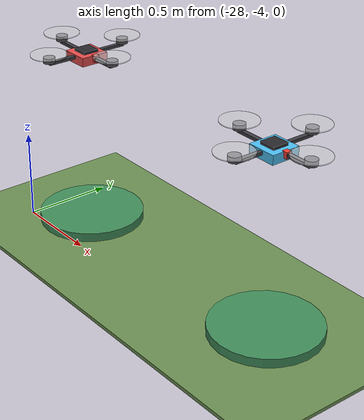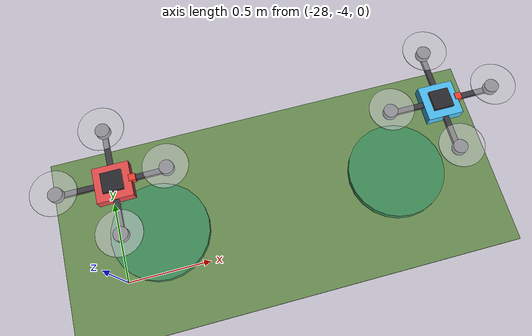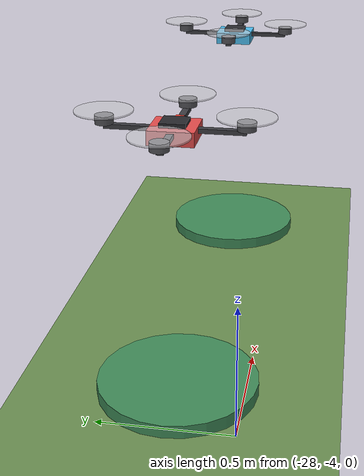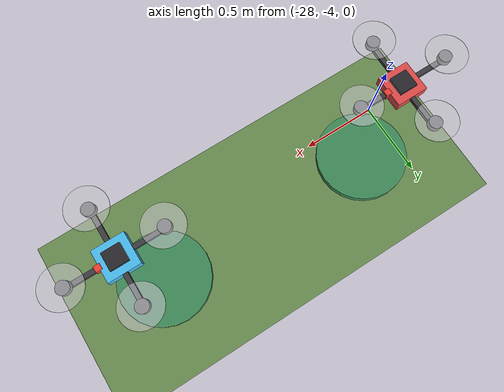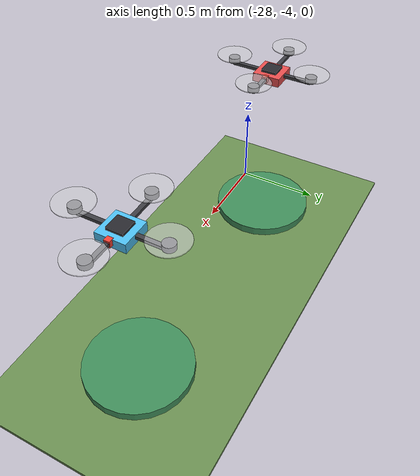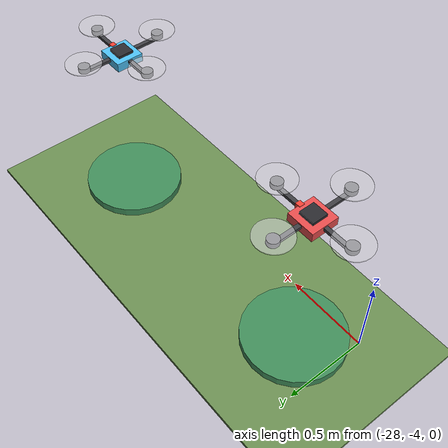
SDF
<sdf version="1.7">
 <world name="zx2026_forest">
  <include><uri>model://sun</uri></include>
  <model name="ground_plane">
   <static>true</static>
   <pose>0.00 0.00 -0.01 0 0 0</pose>
   <link name="link">
    <collision name="col"><geometry><box><size>70.00 70.00 0.02</size></box></geometry></collision>
    <visual name="vis">
     <geometry><box><size>70.00 70.00 0.02</size></box></geometry>
     <material>
      <ambient>0.42 0.56 0.32 1.00</ambient>
      <diffuse>0.42 0.56 0.32 1.00</diffuse>
      <specular>0.2 0.2 0.2 1</specular>
     </material>
    </visual>
   </link>
  </model>
  <model name="pad_0">
   <static>true</static>
   <pose>-27.75 -3.75 0.025 0 0 0</pose>
   <link name="pad">
    <collision name="col">
     <geometry><cylinder><radius>0.3</radius><length>0.05</length></cylinder></geometry>
    </collision>
    <visual name="vis">
     <geometry><cylinder><radius>0.3</radius><length>0.05</length></cylinder></geometry>
     <material>
      <ambient>0.25 0.55 0.35 1.00</ambient>
      <diffuse>0.25 0.55 0.35 1.00</diffuse>
      <specular>0.2 0.2 0.2 1</specular>
     </material>
    </visual>
   </link>
  </model>
  <model name="pad_1">
   <static>true</static>
   <pose>-26.25 -3.75 0.025 0 0 0</pose>
   <link name="pad">
    <collision name="col">
     <geometry><cylinder><radius>0.3</radius><length>0.05</length></cylinder></geometry>
    </collision>
    <visual name="vis">
     <geometry><cylinder><radius>0.3</radius><length>0.05</length></cylinder></geometry>
     <material>
      <ambient>0.25 0.55 0.35 1.00</ambient>
      <diffuse>0.25 0.55 0.35 1.00</diffuse>
      <specular>0.2 0.2 0.2 1</specular>
     </material>
    </visual>
   </link>
  </model>
  <model name="drone_0">
   <pose>-27.75 -3.75 1.0 0 0 0</pose>
   <link name="base_link">
    <inertial>
     <mass>2.0</mass>
     <inertia><ixx>0.04833</ixx><iyy>0.04833</iyy><izz>0.08333</izz><ixy>0</ixy><ixz>0</ixz><iyz>0</iyz></inertia>
    </inertial>
    <collision name="col"><geometry><box><size>0.5 0.5 0.2</size></box></geometry></collision>
    <visual name="chassis">
     <geometry><box><size>0.16 0.16 0.05</size></box></geometry>
     <material>
      <ambient>0.90 0.30 0.30 1.00</ambient>
      <diffuse>0.90 0.30 0.30 1.00</diffuse>
      <specular>0.2 0.2 0.2 1</specular>
     </material>
    </visual>
    <visual name="top">
     <pose>0.000 0.000 0.033 0 0 0.000</pose>
     <geometry><box><size>0.09 0.09 0.015</size></box></geometry>
     <material>
      <ambient>0.16 0.16 0.18 1.00</ambient>
      <diffuse>0.16 0.16 0.18 1.00</diffuse>
      <specular>0.2 0.2 0.2 1</specular>
     </material>
    </visual>
    <visual name="nose">
     <pose>0.085 0.000 0.010 0 0 0.000</pose>
     <geometry><box><size>0.03 0.03 0.035</size></box></geometry>
     <material>
      <ambient>0.95 0.25 0.20 1.00</ambient>
      <diffuse>0.95 0.25 0.20 1.00</diffuse>
      <specular>0.2 0.2 0.2 1</specular>
     </material>
    </visual>
    <visual name="arm0">
     <pose>0.120 0.000 0.010 0 0 0.000</pose>
     <geometry><box><size>0.24 0.024 0.016</size></box></geometry>
     <material>
      <ambient>0.24 0.24 0.26 1.00</ambient>
      <diffuse>0.24 0.24 0.26 1.00</diffuse>
      <specular>0.2 0.2 0.2 1</specular>
     </material>
    </visual>
    <visual name="motor0">
     <pose>0.240 0.000 0.032 0 0 0.000</pose>
     <geometry><cylinder><radius>0.032</radius><length>0.03</length></cylinder></geometry>
     <material>
      <ambient>0.33 0.33 0.35 1.00</ambient>
      <diffuse>0.33 0.33 0.35 1.00</diffuse>
      <specular>0.2 0.2 0.2 1</specular>
     </material>
    </visual>
    <visual name="prop0">
     <pose>0.240 0.000 0.062 0 0 0.000</pose>
     <geometry><cylinder><radius>0.10</radius><length>0.006</length></cylinder></geometry>
     <material>
      <ambient>0.82 0.82 0.84 0.55</ambient>
      <diffuse>0.82 0.82 0.84 0.55</diffuse>
      <specular>0.2 0.2 0.2 1</specular>
     </material>
    </visual>
    <visual name="arm1">
     <pose>-0.120 0.000 0.010 0 0 0.000</pose>
     <geometry><box><size>0.24 0.024 0.016</size></box></geometry>
     <material>
      <ambient>0.24 0.24 0.26 1.00</ambient>
      <diffuse>0.24 0.24 0.26 1.00</diffuse>
      <specular>0.2 0.2 0.2 1</specular>
     </material>
    </visual>
    <visual name="motor1">
     <pose>-0.240 0.000 0.032 0 0 0.000</pose>
     <geometry><cylinder><radius>0.032</radius><length>0.03</length></cylinder></geometry>
     <material>
      <ambient>0.33 0.33 0.35 1.00</ambient>
      <diffuse>0.33 0.33 0.35 1.00</diffuse>
      <specular>0.2 0.2 0.2 1</specular>
     </material>
    </visual>
    <visual name="prop1">
     <pose>-0.240 0.000 0.062 0 0 0.000</pose>
     <geometry><cylinder><radius>0.10</radius><length>0.006</length></cylinder></geometry>
     <material>
      <ambient>0.82 0.82 0.84 0.55</ambient>
      <diffuse>0.82 0.82 0.84 0.55</diffuse>
      <specular>0.2 0.2 0.2 1</specular>
     </material>
    </visual>
    <visual name="arm2">
     <pose>0.000 0.120 0.010 0 0 0.000</pose>
     <geometry><box><size>0.024 0.24 0.016</size></box></geometry>
     <material>
      <ambient>0.24 0.24 0.26 1.00</ambient>
      <diffuse>0.24 0.24 0.26 1.00</diffuse>
      <specular>0.2 0.2 0.2 1</specular>
     </material>
    </visual>
    <visual name="motor2">
     <pose>0.000 0.240 0.032 0 0 0.000</pose>
     <geometry><cylinder><radius>0.032</radius><length>0.03</length></cylinder></geometry>
     <material>
      <ambient>0.33 0.33 0.35 1.00</ambient>
      <diffuse>0.33 0.33 0.35 1.00</diffuse>
      <specular>0.2 0.2 0.2 1</specular>
     </material>
    </visual>
    <visual name="prop2">
     <pose>0.000 0.240 0.062 0 0 0.000</pose>
     <geometry><cylinder><radius>0.10</radius><length>0.006</length></cylinder></geometry>
     <material>
      <ambient>0.82 0.82 0.84 0.55</ambient>
      <diffuse>0.82 0.82 0.84 0.55</diffuse>
      <specular>0.2 0.2 0.2 1</specular>
     </material>
    </visual>
    <visual name="arm3">
     <pose>0.000 -0.120 0.010 0 0 0.000</pose>
     <geometry><box><size>0.024 0.24 0.016</size></box></geometry>
     <material>
      <ambient>0.24 0.24 0.26 1.00</ambient>
      <diffuse>0.24 0.24 0.26 1.00</diffuse>
      <specular>0.2 0.2 0.2 1</specular>
     </material>
    </visual>
    <visual name="motor3">
     <pose>0.000 -0.240 0.032 0 0 0.000</pose>
     <geometry><cylinder><radius>0.032</radius><length>0.03</length></cylinder></geometry>
     <material>
      <ambient>0.33 0.33 0.35 1.00</ambient>
      <diffuse>0.33 0.33 0.35 1.00</diffuse>
      <specular>0.2 0.2 0.2 1</specular>
     </material>
    </visual>
    <visual name="prop3">
     <pose>0.000 -0.240 0.062 0 0 0.000</pose>
     <geometry><cylinder><radius>0.10</radius><length>0.006</length></cylinder></geometry>
     <material>
      <ambient>0.82 0.82 0.84 0.55</ambient>
      <diffuse>0.82 0.82 0.84 0.55</diffuse>
      <specular>0.2 0.2 0.2 1</specular>
     </material>
    </visual>
   </link>
   <plugin name="drone_vel_0" filename="libdrone_vel_plugin.so">
    <drone_id>0</drone_id>
    <kp>3.0</kp>
    <g>9.81</g>
   </plugin>
  </model>
  <model name="drone_1">
   <pose>-26.25 -3.75 1.0 0 0 0</pose>
   <link name="base_link">
    <inertial>
     <mass>2.0</mass>
     <inertia><ixx>0.04833</ixx><iyy>0.04833</iyy><izz>0.08333</izz><ixy>0</ixy><ixz>0</ixz><iyz>0</iyz></inertia>
    </inertial>
    <collision name="col"><geometry><box><size>0.5 0.5 0.2</size></box></geometry></collision>
    <visual name="chassis">
     <geometry><box><size>0.16 0.16 0.05</size></box></geometry>
     <material>
      <ambient>0.30 0.75 0.95 1.00</ambient>
      <diffuse>0.30 0.75 0.95 1.00</diffuse>
      <specular>0.2 0.2 0.2 1</specular>
     </material>
    </visual>
    <visual name="top">
     <pose>0.000 0.000 0.033 0 0 0.000</pose>
     <geometry><box><size>0.09 0.09 0.015</size></box></geometry>
     <material>
      <ambient>0.16 0.16 0.18 1.00</ambient>
      <diffuse>0.16 0.16 0.18 1.00</diffuse>
      <specular>0.2 0.2 0.2 1</specular>
     </material>
    </visual>
    <visual name="nose">
     <pose>0.085 0.000 0.010 0 0 0.000</pose>
     <geometry><box><size>0.03 0.03 0.035</size></box></geometry>
     <material>
      <ambient>0.95 0.25 0.20 1.00</ambient>
      <diffuse>0.95 0.25 0.20 1.00</diffuse>
      <specular>0.2 0.2 0.2 1</specular>
     </material>
    </visual>
    <visual name="arm0">
     <pose>0.120 0.000 0.010 0 0 0.000</pose>
     <geometry><box><size>0.24 0.024 0.016</size></box></geometry>
     <material>
      <ambient>0.24 0.24 0.26 1.00</ambient>
      <diffuse>0.24 0.24 0.26 1.00</diffuse>
      <specular>0.2 0.2 0.2 1</specular>
     </material>
    </visual>
    <visual name="motor0">
     <pose>0.240 0.000 0.032 0 0 0.000</pose>
     <geometry><cylinder><radius>0.032</radius><length>0.03</length></cylinder></geometry>
     <material>
      <ambient>0.33 0.33 0.35 1.00</ambient>
      <diffuse>0.33 0.33 0.35 1.00</diffuse>
      <specular>0.2 0.2 0.2 1</specular>
     </material>
    </visual>
    <visual name="prop0">
     <pose>0.240 0.000 0.062 0 0 0.000</pose>
     <geometry><cylinder><radius>0.10</radius><length>0.006</length></cylinder></geometry>
     <material>
      <ambient>0.82 0.82 0.84 0.55</ambient>
      <diffuse>0.82 0.82 0.84 0.55</diffuse>
      <specular>0.2 0.2 0.2 1</specular>
     </material>
    </visual>
    <visual name="arm1">
     <pose>-0.120 0.000 0.010 0 0 0.000</pose>
     <geometry><box><size>0.24 0.024 0.016</size></box></geometry>
     <material>
      <ambient>0.24 0.24 0.26 1.00</ambient>
      <diffuse>0.24 0.24 0.26 1.00</diffuse>
      <specular>0.2 0.2 0.2 1</specular>
     </material>
    </visual>
    <visual name="motor1">
     <pose>-0.240 0.000 0.032 0 0 0.000</pose>
     <geometry><cylinder><radius>0.032</radius><length>0.03</length></cylinder></geometry>
     <material>
      <ambient>0.33 0.33 0.35 1.00</ambient>
      <diffuse>0.33 0.33 0.35 1.00</diffuse>
      <specular>0.2 0.2 0.2 1</specular>
     </material>
    </visual>
    <visual name="prop1">
     <pose>-0.240 0.000 0.062 0 0 0.000</pose>
     <geometry><cylinder><radius>0.10</radius><length>0.006</length></cylinder></geometry>
     <material>
      <ambient>0.82 0.82 0.84 0.55</ambient>
      <diffuse>0.82 0.82 0.84 0.55</diffuse>
      <specular>0.2 0.2 0.2 1</specular>
     </material>
    </visual>
    <visual name="arm2">
     <pose>0.000 0.120 0.010 0 0 0.000</pose>
     <geometry><box><size>0.024 0.24 0.016</size></box></geometry>
     <material>
      <ambient>0.24 0.24 0.26 1.00</ambient>
      <diffuse>0.24 0.24 0.26 1.00</diffuse>
      <specular>0.2 0.2 0.2 1</specular>
     </material>
    </visual>
    <visual name="motor2">
     <pose>0.000 0.240 0.032 0 0 0.000</pose>
     <geometry><cylinder><radius>0.032</radius><length>0.03</length></cylinder></geometry>
     <material>
      <ambient>0.33 0.33 0.35 1.00</ambient>
      <diffuse>0.33 0.33 0.35 1.00</diffuse>
      <specular>0.2 0.2 0.2 1</specular>
     </material>
    </visual>
    <visual name="prop2">
     <pose>0.000 0.240 0.062 0 0 0.000</pose>
     <geometry><cylinder><radius>0.10</radius><length>0.006</length></cylinder></geometry>
     <material>
      <ambient>0.82 0.82 0.84 0.55</ambient>
      <diffuse>0.82 0.82 0.84 0.55</diffuse>
      <specular>0.2 0.2 0.2 1</specular>
     </material>
    </visual>
    <visual name="arm3">
     <pose>0.000 -0.120 0.010 0 0 0.000</pose>
     <geometry><box><size>0.024 0.24 0.016</size></box></geometry>
     <material>
      <ambient>0.24 0.24 0.26 1.00</ambient>
      <diffuse>0.24 0.24 0.26 1.00</diffuse>
      <specular>0.2 0.2 0.2 1</specular>
     </material>
    </visual>
    <visual name="motor3">
     <pose>0.000 -0.240 0.032 0 0 0.000</pose>
     <geometry><cylinder><radius>0.032</radius><length>0.03</length></cylinder></geometry>
     <material>
      <ambient>0.33 0.33 0.35 1.00</ambient>
      <diffuse>0.33 0.33 0.35 1.00</diffuse>
      <specular>0.2 0.2 0.2 1</specular>
     </material>
    </visual>
    <visual name="prop3">
     <pose>0.000 -0.240 0.062 0 0 0.000</pose>
     <geometry><cylinder><radius>0.10</radius><length>0.006</length></cylinder></geometry>
     <material>
      <ambient>0.82 0.82 0.84 0.55</ambient>
      <diffuse>0.82 0.82 0.84 0.55</diffuse>
      <specular>0.2 0.2 0.2 1</specular>
     </material>
    </visual>
   </link>
   <plugin name="drone_vel_1" filename="libdrone_vel_plugin.so">
    <drone_id>1</drone_id>
    <kp>3.0</kp>
    <g>9.81</g>
   </plugin>
  </model>
 </world>
</sdf>
